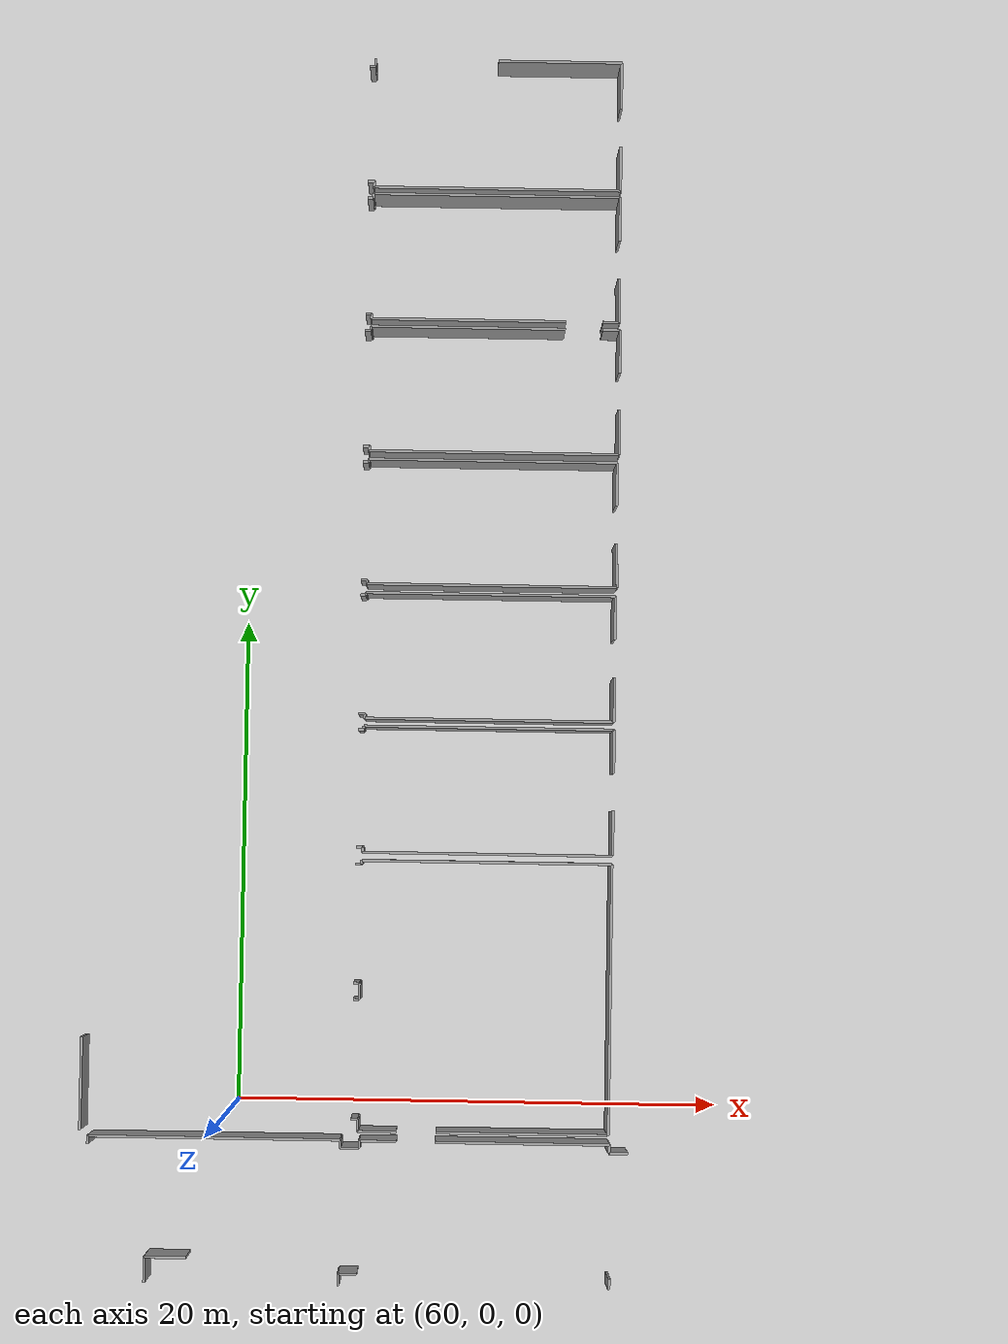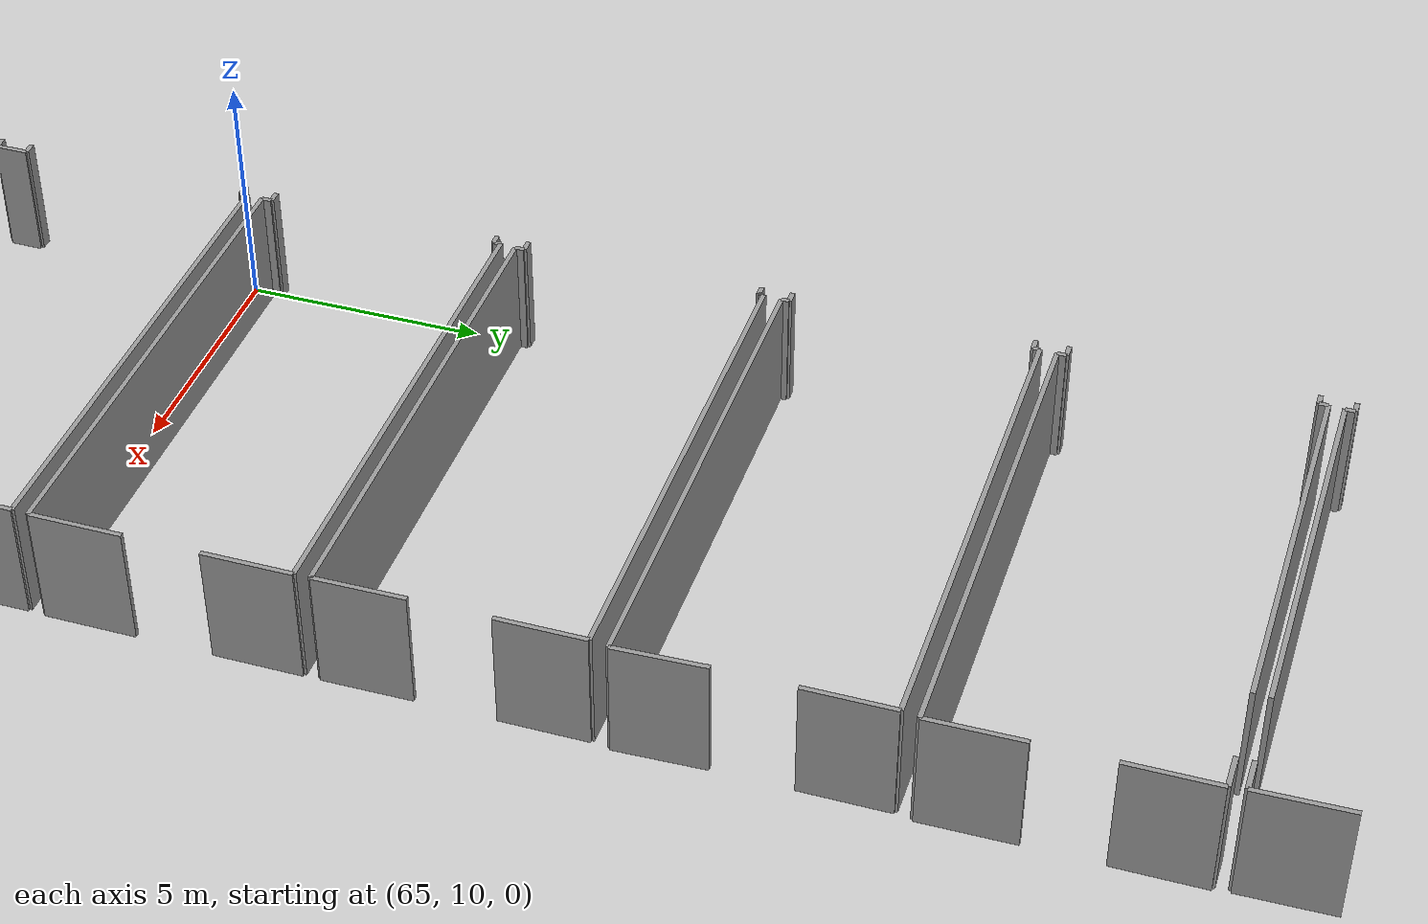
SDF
<sdf version="1.6">
 <world name="default">
  <model name="ground_plane">
   <static>1</static>
   <link name="link">
    <collision name="collision">
     <geometry><plane><normal>0 0 1</normal><size>100 100</size></plane></geometry>
     <surface><friction><ode><mu>100</mu><mu2>50</mu2></ode></friction></surface>
    </collision>
    <visual name="visual">
     <cast_shadows>0</cast_shadows>
     <geometry><plane><normal>0 0 1</normal><size>100 100</size></plane></geometry>
     <material>
      <script><uri>file://media/materials/scripts/gazebo.material</uri><name>Gazebo/Grey</name></script>
     </material>
    </visual>
   </link>
  </model>
  <model name="50015848">
   <static>1</static>
   <link name="Wall_550">
    <collision name="Wall_550_Collision">
     <geometry><box><size>0.328070587191 0.1 2.5</size></box></geometry>
     <pose>0.164035293595 0 1.25 0 0 0</pose>
    </collision>
    <visual name="Wall_550_Visual">
     <pose>0.164035293595 0 1.25 0 0 0</pose>
     <geometry><box><size>0.328070587191 0.1 2.5</size></box></geometry>
     <material>
      <script><uri>file://media/materials/scripts/gazebo.material</uri><name>Gazebo/Grey</name></script>
      <ambient>1 1 1 1</ambient>
     </material>
    </visual>
    <pose>185.689474719 -45.5980056962 0 0 0 1.57079632679</pose>
   </link>
   <link name="Wall_551">
    <collision name="Wall_551_Collision">
     <geometry><box><size>10.443707223 0.1 2.5</size></box></geometry>
     <pose>5.2218536115 0 1.25 0 0 0</pose>
    </collision>
    <visual name="Wall_551_Visual">
     <pose>5.2218536115 0 1.25 0 0 0</pose>
     <geometry><box><size>10.443707223 0.1 2.5</size></box></geometry>
     <material>
      <script><uri>file://media/materials/scripts/gazebo.material</uri><name>Gazebo/Grey</name></script>
      <ambient>1 1 1 1</ambient>
     </material>
    </visual>
    <pose>185.689474719 -45.269935109 0 0 0 0.0</pose>
   </link>
   <link name="Wall_552">
    <collision name="Wall_552_Collision">
     <geometry><box><size>0.333906336228 0.1 2.5</size></box></geometry>
     <pose>0.166953168114 0 1.25 0 0 0</pose>
    </collision>
    <visual name="Wall_552_Visual">
     <pose>0.166953168114 0 1.25 0 0 0</pose>
     <geometry><box><size>0.333906336228 0.1 2.5</size></box></geometry>
     <material>
      <script><uri>file://media/materials/scripts/gazebo.material</uri><name>Gazebo/Grey</name></script>
      <ambient>1 1 1 1</ambient>
     </material>
    </visual>
    <pose>196.133181942 -45.269935109 0 0 0 -1.57079632679</pose>
   </link>
   <link name="Wall_553">
    <collision name="Wall_553_Collision">
     <geometry><box><size>0.797975248812 0.1 2.5</size></box></geometry>
     <pose>0.398987624406 0 1.25 0 0 0</pose>
    </collision>
    <visual name="Wall_553_Visual">
     <pose>0.398987624406 0 1.25 0 0 0</pose>
     <geometry><box><size>0.797975248812 0.1 2.5</size></box></geometry>
     <material>
      <script><uri>file://media/materials/scripts/gazebo.material</uri><name>Gazebo/Grey</name></script>
      <ambient>1 1 1 1</ambient>
     </material>
    </visual>
    <pose>196.133181942 -45.6038414452 0 0 0 0.0</pose>
   </link>
   <link name="Wall_554">
    <collision name="Wall_554_Collision">
     <geometry><box><size>0.304727591041 0.1 2.5</size></box></geometry>
     <pose>0.15236379552 0 1.25 0 0 0</pose>
    </collision>
    <visual name="Wall_554_Visual">
     <pose>0.15236379552 0 1.25 0 0 0</pose>
     <geometry><box><size>0.304727591041 0.1 2.5</size></box></geometry>
     <material>
      <script><uri>file://media/materials/scripts/gazebo.material</uri><name>Gazebo/Grey</name></script>
      <ambient>1 1 1 1</ambient>
     </material>
    </visual>
    <pose>196.931157191 -45.6038414452 0 0 0 1.57079632679</pose>
   </link>
   <link name="Wall_555">
    <collision name="Wall_555_Collision">
     <geometry><box><size>1.53759300725 0.1 2.5</size></box></geometry>
     <pose>0.768796503625 0 1.25 0 0 0</pose>
    </collision>
    <visual name="Wall_555_Visual">
     <pose>0.768796503625 0 1.25 0 0 0</pose>
     <geometry><box><size>1.53759300725 0.1 2.5</size></box></geometry>
     <material>
      <script><uri>file://media/materials/scripts/gazebo.material</uri><name>Gazebo/Grey</name></script>
      <ambient>1 1 1 1</ambient>
     </material>
    </visual>
    <pose>196.931157191 -45.2991138542 0 0 0 0.0</pose>
   </link>
   <link name="Wall_556">
    <collision name="Wall_556_Collision">
     <geometry><box><size>7.22465730832 0.1 2.5</size></box></geometry>
     <pose>3.61232865416 0 1.25 0 0 0</pose>
    </collision>
    <visual name="Wall_556_Visual">
     <pose>3.61232865416 0 1.25 0 0 0</pose>
     <geometry><box><size>7.22465730832 0.1 2.5</size></box></geometry>
     <material>
      <script><uri>file://media/materials/scripts/gazebo.material</uri><name>Gazebo/Grey</name></script>
      <ambient>1 1 1 1</ambient>
     </material>
    </visual>
    <pose>200.049984459 -45.2991138542 0 0 0 0.0</pose>
   </link>
   <link name="Wall_557">
    <collision name="Wall_557_Collision">
     <geometry><box><size>0.348115116493 0.1 2.5</size></box></geometry>
     <pose>0.174057558246 0 1.25 0 0 0</pose>
    </collision>
    <visual name="Wall_557_Visual">
     <pose>0.174057558246 0 1.25 0 0 0</pose>
     <geometry><box><size>0.348115116493 0.1 2.5</size></box></geometry>
     <material>
      <script><uri>file://media/materials/scripts/gazebo.material</uri><name>Gazebo/Grey</name></script>
      <ambient>1 1 1 1</ambient>
     </material>
    </visual>
    <pose>207.274641767 -45.2991138542 0 0 0 -1.57079632679</pose>
   </link>
   <link name="Wall_558">
    <collision name="Wall_558_Collision">
     <geometry><box><size>0.768796503625 0.1 2.5</size></box></geometry>
     <pose>0.384398251813 0 1.25 0 0 0</pose>
    </collision>
    <visual name="Wall_558_Visual">
     <pose>0.384398251813 0 1.25 0 0 0</pose>
     <geometry><box><size>0.768796503625 0.1 2.5</size></box></geometry>
     <material>
      <script><uri>file://media/materials/scripts/gazebo.material</uri><name>Gazebo/Grey</name></script>
      <ambient>1 1 1 1</ambient>
     </material>
    </visual>
    <pose>207.274641767 -45.6472289707 0 0 0 0.0</pose>
   </link>
   <link name="Wall_597">
    <collision name="Wall_597_Collision">
     <geometry><box><size>0.460516717518 0.1 2.5</size></box></geometry>
     <pose>0.230258358759 0 1.25 0 0 0</pose>
    </collision>
    <visual name="Wall_597_Visual">
     <pose>0.230258358759 0 1.25 0 0 0</pose>
     <geometry><box><size>0.460516717518 0.1 2.5</size></box></geometry>
     <material>
      <script><uri>file://media/materials/scripts/gazebo.material</uri><name>Gazebo/Grey</name></script>
      <ambient>1 1 1 1</ambient>
     </material>
    </visual>
    <pose>207.334521627 -50.7816732107 0 0 0 -1.57079632679</pose>
   </link>
   <link name="Wall_601">
    <collision name="Wall_601_Collision">
     <geometry><box><size>0.76752786253 0.1 2.5</size></box></geometry>
     <pose>0.383763931265 0 1.25 0 0 0</pose>
    </collision>
    <visual name="Wall_601_Visual">
     <pose>0.383763931265 0 1.25 0 0 0</pose>
     <geometry><box><size>0.76752786253 0.1 2.5</size></box></geometry>
     <material>
      <script><uri>file://media/materials/scripts/gazebo.material</uri><name>Gazebo/Grey</name></script>
      <ambient>1 1 1 1</ambient>
     </material>
    </visual>
    <pose>196.920246878 -50.7733001795 0 0 0 3.14159265359</pose>
   </link>
   <link name="Wall_602">
    <collision name="Wall_602_Collision">
     <geometry><box><size>0.483859713668 0.1 2.5</size></box></geometry>
     <pose>0.241929856834 0 1.25 0 0 0</pose>
    </collision>
    <visual name="Wall_602_Visual">
     <pose>0.241929856834 0 1.25 0 0 0</pose>
     <geometry><box><size>0.483859713668 0.1 2.5</size></box></geometry>
     <material>
      <script><uri>file://media/materials/scripts/gazebo.material</uri><name>Gazebo/Grey</name></script>
      <ambient>1 1 1 1</ambient>
     </material>
    </visual>
    <pose>196.152719015 -50.7733001795 0 0 0 -1.57079632679</pose>
   </link>
   <link name="Wall_606">
    <collision name="Wall_606_Collision">
     <geometry><box><size>1.7263668022 0.1 2.5</size></box></geometry>
     <pose>0.8631834011 0 1.25 0 0 0</pose>
    </collision>
    <visual name="Wall_606_Visual">
     <pose>0.8631834011 0 1.25 0 0 0</pose>
     <geometry><box><size>1.7263668022 0.1 2.5</size></box></geometry>
     <material>
      <script><uri>file://media/materials/scripts/gazebo.material</uri><name>Gazebo/Grey</name></script>
      <ambient>1 1 1 1</ambient>
     </material>
    </visual>
    <pose>189.866094932 -50.2024116867 0 0 0 3.14159265359</pose>
   </link>
   <link name="Wall_607">
    <collision name="Wall_607_Collision">
     <geometry><box><size>1.0445990777 0.1 2.5</size></box></geometry>
     <pose>0.522299538849 0 1.25 0 0 0</pose>
    </collision>
    <visual name="Wall_607_Visual">
     <pose>0.522299538849 0 1.25 0 0 0</pose>
     <geometry><box><size>1.0445990777 0.1 2.5</size></box></geometry>
     <material>
      <script><uri>file://media/materials/scripts/gazebo.material</uri><name>Gazebo/Grey</name></script>
      <ambient>1 1 1 1</ambient>
     </material>
    </visual>
    <pose>188.13972813 -50.2024116867 0 0 0 -1.57079632679</pose>
   </link>
   <link name="Wall_893">
    <collision name="Wall_893_Collision">
     <geometry><box><size>3.82216189129 0.1 2.5</size></box></geometry>
     <pose>1.91108094565 0 1.25 0 0 0</pose>
    </collision>
    <visual name="Wall_893_Visual">
     <pose>1.91108094565 0 1.25 0 0 0</pose>
     <geometry><box><size>3.82216189129 0.1 2.5</size></box></geometry>
     <material>
      <script><uri>file://media/materials/scripts/gazebo.material</uri><name>Gazebo/Grey</name></script>
      <ambient>1 1 1 1</ambient>
     </material>
    </visual>
    <pose>185.348717721 -41.195567368 0 0 0 -1.57079632679</pose>
   </link>
   <link name="Wall_940">
    <collision name="Wall_940_Collision">
     <geometry><box><size>7.12392720537 0.1 2.5</size></box></geometry>
     <pose>3.56196360269 0 1.25 0 0 0</pose>
    </collision>
    <visual name="Wall_940_Visual">
     <pose>3.56196360269 0 1.25 0 0 0</pose>
     <geometry><box><size>7.12392720537 0.1 2.5</size></box></geometry>
     <material>
      <script><uri>file://media/materials/scripts/gazebo.material</uri><name>Gazebo/Grey</name></script>
      <ambient>1 1 1 1</ambient>
     </material>
    </visual>
    <pose>207.219329016 -44.9109096791 0 0 0 3.14159265359</pose>
   </link>
   <link name="Wall_941">
    <collision name="Wall_941_Collision">
     <geometry><box><size>1.59975642091 0.1 2.5</size></box></geometry>
     <pose>0.799878210455 0 1.25 0 0 0</pose>
    </collision>
    <visual name="Wall_941_Visual">
     <pose>0.799878210455 0 1.25 0 0 0</pose>
     <geometry><box><size>1.59975642091 0.1 2.5</size></box></geometry>
     <material>
      <script><uri>file://media/materials/scripts/gazebo.material</uri><name>Gazebo/Grey</name></script>
      <ambient>1 1 1 1</ambient>
     </material>
    </visual>
    <pose>198.443884833 -44.9109096791 0 0 0 3.14159265359</pose>
   </link>
   <link name="Wall_942">
    <collision name="Wall_942_Collision">
     <geometry><box><size>0.511262361322 0.1 2.5</size></box></geometry>
     <pose>0.255631180661 0 1.25 0 0 0</pose>
    </collision>
    <visual name="Wall_942_Visual">
     <pose>0.255631180661 0 1.25 0 0 0</pose>
     <geometry><box><size>0.511262361322 0.1 2.5</size></box></geometry>
     <material>
      <script><uri>file://media/materials/scripts/gazebo.material</uri><name>Gazebo/Grey</name></script>
      <ambient>1 1 1 1</ambient>
     </material>
    </visual>
    <pose>196.844128412 -44.9109096791 0 0 0 1.57079632679</pose>
   </link>
   <link name="Wall_943">
    <collision name="Wall_943_Collision">
     <geometry><box><size>0.275802574073 0.1 2.5</size></box></geometry>
     <pose>0.137901287036 0 1.25 0 0 0</pose>
    </collision>
    <visual name="Wall_943_Visual">
     <pose>0.137901287036 0 1.25 0 0 0</pose>
     <geometry><box><size>0.275802574073 0.1 2.5</size></box></geometry>
     <material>
      <script><uri>file://media/materials/scripts/gazebo.material</uri><name>Gazebo/Grey</name></script>
      <ambient>1 1 1 1</ambient>
     </material>
    </visual>
    <pose>196.844128412 -44.3996473178 0 0 0 3.14159265359</pose>
   </link>
   <link name="Wall_944">
    <collision name="Wall_944_Collision">
     <geometry><box><size>0.259817696275 0.1 2.5</size></box></geometry>
     <pose>0.129908848137 0 1.25 0 0 0</pose>
    </collision>
    <visual name="Wall_944_Visual">
     <pose>0.129908848137 0 1.25 0 0 0</pose>
     <geometry><box><size>0.259817696275 0.1 2.5</size></box></geometry>
     <material>
      <script><uri>file://media/materials/scripts/gazebo.material</uri><name>Gazebo/Grey</name></script>
      <ambient>1 1 1 1</ambient>
     </material>
    </visual>
    <pose>196.568325838 -39.479857151 0 0 0 0.0</pose>
   </link>
   <link name="Wall_945">
    <collision name="Wall_945_Collision">
     <geometry><box><size>0.681260268064 0.1 2.5</size></box></geometry>
     <pose>0.340630134032 0 1.25 0 0 0</pose>
    </collision>
    <visual name="Wall_945_Visual">
     <pose>0.340630134032 0 1.25 0 0 0</pose>
     <geometry><box><size>0.681260268064 0.1 2.5</size></box></geometry>
     <material>
      <script><uri>file://media/materials/scripts/gazebo.material</uri><name>Gazebo/Grey</name></script>
      <ambient>1 1 1 1</ambient>
     </material>
    </visual>
    <pose>196.828143534 -39.479857151 0 0 0 1.57079632679</pose>
   </link>
   <link name="Wall_946">
    <collision name="Wall_946_Collision">
     <geometry><box><size>0.252205849704 0.1 2.5</size></box></geometry>
     <pose>0.126102924852 0 1.25 0 0 0</pose>
    </collision>
    <visual name="Wall_946_Visual">
     <pose>0.126102924852 0 1.25 0 0 0</pose>
     <geometry><box><size>0.252205849704 0.1 2.5</size></box></geometry>
     <material>
      <script><uri>file://media/materials/scripts/gazebo.material</uri><name>Gazebo/Grey</name></script>
      <ambient>1 1 1 1</ambient>
     </material>
    </visual>
    <pose>196.828143534 -38.7985968829 0 0 0 3.14159265359</pose>
   </link>
   <link name="Wall_947">
    <collision name="Wall_947_Collision">
     <geometry><box><size>0.252205849704 0.1 2.5</size></box></geometry>
     <pose>0.126102924852 0 1.25 0 0 0</pose>
    </collision>
    <visual name="Wall_947_Visual">
     <pose>0.126102924852 0 1.25 0 0 0</pose>
     <geometry><box><size>0.252205849704 0.1 2.5</size></box></geometry>
     <material>
      <script><uri>file://media/materials/scripts/gazebo.material</uri><name>Gazebo/Grey</name></script>
      <ambient>1 1 1 1</ambient>
     </material>
    </visual>
    <pose>196.575937684 -33.8663740335 0 0 0 0.0</pose>
   </link>
   <link name="Wall_948">
    <collision name="Wall_948_Collision">
     <geometry><box><size>0.151475746754 0.1 2.5</size></box></geometry>
     <pose>0.0757378733769 0 1.25 0 0 0</pose>
    </collision>
    <visual name="Wall_948_Visual">
     <pose>0.0757378733769 0 1.25 0 0 0</pose>
     <geometry><box><size>0.151475746754 0.1 2.5</size></box></geometry>
     <material>
      <script><uri>file://media/materials/scripts/gazebo.material</uri><name>Gazebo/Grey</name></script>
      <ambient>1 1 1 1</ambient>
     </material>
    </visual>
    <pose>196.828143534 -33.8663740335 0 0 0 1.57079632679</pose>
   </link>
   <link name="Wall_949">
    <collision name="Wall_949_Collision">
     <geometry><box><size>10.3944839485 0.1 2.5</size></box></geometry>
     <pose>5.19724197426 0 1.25 0 0 0</pose>
    </collision>
    <visual name="Wall_949_Visual">
     <pose>5.19724197426 0 1.25 0 0 0</pose>
     <geometry><box><size>10.3944839485 0.1 2.5</size></box></geometry>
     <material>
      <script><uri>file://media/materials/scripts/gazebo.material</uri><name>Gazebo/Grey</name></script>
      <ambient>1 1 1 1</ambient>
     </material>
    </visual>
    <pose>196.828143534 -33.7148982867 0 0 0 0.0</pose>
   </link>
   <link name="Wall_950">
    <collision name="Wall_950_Collision">
     <geometry><box><size>11.1960118783 0.1 2.5</size></box></geometry>
     <pose>5.59800593914 0 1.25 0 0 0</pose>
    </collision>
    <visual name="Wall_950_Visual">
     <pose>5.59800593914 0 1.25 0 0 0</pose>
     <geometry><box><size>11.1960118783 0.1 2.5</size></box></geometry>
     <material>
      <script><uri>file://media/materials/scripts/gazebo.material</uri><name>Gazebo/Grey</name></script>
      <ambient>1 1 1 1</ambient>
     </material>
    </visual>
    <pose>207.222627483 -33.7148982867 0 0 0 -1.57109093767</pose>
   </link>
   <link name="Wall_1015">
    <collision name="Wall_1015_Collision">
     <geometry><box><size>10.3868721019 0.1 2.5</size></box></geometry>
     <pose>5.19343605097 0 1.25 0 0 0</pose>
    </collision>
    <visual name="Wall_1015_Visual">
     <pose>5.19343605097 0 1.25 0 0 0</pose>
     <geometry><box><size>10.3868721019 0.1 2.5</size></box></geometry>
     <material>
      <script><uri>file://media/materials/scripts/gazebo.material</uri><name>Gazebo/Grey</name></script>
      <ambient>1 1 1 1</ambient>
     </material>
    </visual>
    <pose>207.241910827 -33.3738875603 0 0 0 3.14159265359</pose>
   </link>
   <link name="Wall_1016">
    <collision name="Wall_1016_Collision">
     <geometry><box><size>0.21186306288 0.1 2.5</size></box></geometry>
     <pose>0.10593153144 0 1.25 0 0 0</pose>
    </collision>
    <visual name="Wall_1016_Visual">
     <pose>0.10593153144 0 1.25 0 0 0</pose>
     <geometry><box><size>0.21186306288 0.1 2.5</size></box></geometry>
     <material>
      <script><uri>file://media/materials/scripts/gazebo.material</uri><name>Gazebo/Grey</name></script>
      <ambient>1 1 1 1</ambient>
     </material>
    </visual>
    <pose>196.855038725 -33.3738875603 0 0 0 1.57079632679</pose>
   </link>
   <link name="Wall_1017">
    <collision name="Wall_1017_Collision">
     <geometry><box><size>0.259563968056 0.1 2.5</size></box></geometry>
     <pose>0.129781984028 0 1.25 0 0 0</pose>
    </collision>
    <visual name="Wall_1017_Visual">
     <pose>0.129781984028 0 1.25 0 0 0</pose>
     <geometry><box><size>0.259563968056 0.1 2.5</size></box></geometry>
     <material>
      <script><uri>file://media/materials/scripts/gazebo.material</uri><name>Gazebo/Grey</name></script>
      <ambient>1 1 1 1</ambient>
     </material>
    </visual>
    <pose>196.855038725 -33.1620244975 0 0 0 3.14159265359</pose>
   </link>
   <link name="Wall_1018">
    <collision name="Wall_1018_Collision">
     <geometry><box><size>0.216937627261 0.1 2.5</size></box></geometry>
     <pose>0.10846881363 0 1.25 0 0 0</pose>
    </collision>
    <visual name="Wall_1018_Visual">
     <pose>0.10846881363 0 1.25 0 0 0</pose>
     <geometry><box><size>0.216937627261 0.1 2.5</size></box></geometry>
     <material>
      <script><uri>file://media/materials/scripts/gazebo.material</uri><name>Gazebo/Grey</name></script>
      <ambient>1 1 1 1</ambient>
     </material>
    </visual>
    <pose>196.595474757 -28.2767413685 0 0 0 0.0</pose>
   </link>
   <link name="Wall_1019">
    <collision name="Wall_1019_Collision">
     <geometry><box><size>0.153505572506 0.1 2.5</size></box></geometry>
     <pose>0.076752786253 0 1.25 0 0 0</pose>
    </collision>
    <visual name="Wall_1019_Visual">
     <pose>0.076752786253 0 1.25 0 0 0</pose>
     <geometry><box><size>0.153505572506 0.1 2.5</size></box></geometry>
     <material>
      <script><uri>file://media/materials/scripts/gazebo.material</uri><name>Gazebo/Grey</name></script>
      <ambient>1 1 1 1</ambient>
     </material>
    </visual>
    <pose>196.812412384 -28.2767413685 0 0 0 1.57079632679</pose>
   </link>
   <link name="Wall_1020">
    <collision name="Wall_1020_Collision">
     <geometry><box><size>10.4317819967 0.1 2.5</size></box></geometry>
     <pose>5.21589099836 0 1.25 0 0 0</pose>
    </collision>
    <visual name="Wall_1020_Visual">
     <pose>5.21589099836 0 1.25 0 0 0</pose>
     <geometry><box><size>10.4317819967 0.1 2.5</size></box></geometry>
     <material>
      <script><uri>file://media/materials/scripts/gazebo.material</uri><name>Gazebo/Grey</name></script>
      <ambient>1 1 1 1</ambient>
     </material>
    </visual>
    <pose>196.812412384 -28.123235796 0 0 0 0.0</pose>
   </link>
   <link name="Wall_1021">
    <collision name="Wall_1021_Collision">
     <geometry><box><size>1.82100742789 0.1 2.5</size></box></geometry>
     <pose>0.910503713947 0 1.25 0 0 0</pose>
    </collision>
    <visual name="Wall_1021_Visual">
     <pose>0.910503713947 0 1.25 0 0 0</pose>
     <geometry><box><size>1.82100742789 0.1 2.5</size></box></geometry>
     <material>
      <script><uri>file://media/materials/scripts/gazebo.material</uri><name>Gazebo/Grey</name></script>
      <ambient>1 1 1 1</ambient>
     </material>
    </visual>
    <pose>207.244194381 -28.123235796 0 0 0 -1.57079632679</pose>
   </link>
   <link name="Wall_1022">
    <collision name="Wall_1022_Collision">
     <geometry><box><size>1.87911257757 0.1 2.5</size></box></geometry>
     <pose>0.939556288785 0 1.25 0 0 0</pose>
    </collision>
    <visual name="Wall_1022_Visual">
     <pose>0.939556288785 0 1.25 0 0 0</pose>
     <geometry><box><size>1.87911257757 0.1 2.5</size></box></geometry>
     <material>
      <script><uri>file://media/materials/scripts/gazebo.material</uri><name>Gazebo/Grey</name></script>
      <ambient>1 1 1 1</ambient>
     </material>
    </visual>
    <pose>207.244194381 -31.4947763703 0 0 0 -1.57201155709</pose>
   </link>
   <link name="Wall_1023">
    <collision name="Wall_1023_Collision">
     <geometry><box><size>10.3942302203 0.1 2.5</size></box></geometry>
     <pose>5.19711511015 0 1.25 0 0 0</pose>
    </collision>
    <visual name="Wall_1023_Visual">
     <pose>5.19711511015 0 1.25 0 0 0</pose>
     <geometry><box><size>10.3942302203 0.1 2.5</size></box></geometry>
     <material>
      <script><uri>file://media/materials/scripts/gazebo.material</uri><name>Gazebo/Grey</name></script>
      <ambient>1 1 1 1</ambient>
     </material>
    </visual>
    <pose>207.238866089 -27.7946577523 0 0 0 3.14159265359</pose>
   </link>
   <link name="Wall_1024">
    <collision name="Wall_1024_Collision">
     <geometry><box><size>0.191818533578 0.1 2.5</size></box></geometry>
     <pose>0.0959092667889 0 1.25 0 0 0</pose>
    </collision>
    <visual name="Wall_1024_Visual">
     <pose>0.0959092667889 0 1.25 0 0 0</pose>
     <geometry><box><size>0.191818533578 0.1 2.5</size></box></geometry>
     <material>
      <script><uri>file://media/materials/scripts/gazebo.material</uri><name>Gazebo/Grey</name></script>
      <ambient>1 1 1 1</ambient>
     </material>
    </visual>
    <pose>196.844635868 -27.7946577523 0 0 0 1.57079632679</pose>
   </link>
   <link name="Wall_1025">
    <collision name="Wall_1025_Collision">
     <geometry><box><size>0.257534142303 0.1 2.5</size></box></geometry>
     <pose>0.128767071152 0 1.25 0 0 0</pose>
    </collision>
    <visual name="Wall_1025_Visual">
     <pose>0.128767071152 0 1.25 0 0 0</pose>
     <geometry><box><size>0.257534142303 0.1 2.5</size></box></geometry>
     <material>
      <script><uri>file://media/materials/scripts/gazebo.material</uri><name>Gazebo/Grey</name></script>
      <ambient>1 1 1 1</ambient>
     </material>
    </visual>
    <pose>196.844635868 -27.6028392188 0 0 0 3.14159265359</pose>
   </link>
   <link name="Wall_1026">
    <collision name="Wall_1026_Collision">
     <geometry><box><size>0.219474909451 0.1 2.5</size></box></geometry>
     <pose>0.109737454725 0 1.25 0 0 0</pose>
    </collision>
    <visual name="Wall_1026_Visual">
     <pose>0.109737454725 0 1.25 0 0 0</pose>
     <geometry><box><size>0.219474909451 0.1 2.5</size></box></geometry>
     <material>
      <script><uri>file://media/materials/scripts/gazebo.material</uri><name>Gazebo/Grey</name></script>
      <ambient>1 1 1 1</ambient>
     </material>
    </visual>
    <pose>196.587101726 -22.6523479375 0 0 0 0.0</pose>
   </link>
   <link name="Wall_1027">
    <collision name="Wall_1027_Collision">
     <geometry><box><size>0.104789754455 0.1 2.5</size></box></geometry>
     <pose>0.0523948772273 0 1.25 0 0 0</pose>
    </collision>
    <visual name="Wall_1027_Visual">
     <pose>0.0523948772273 0 1.25 0 0 0</pose>
     <geometry><box><size>0.104789754455 0.1 2.5</size></box></geometry>
     <material>
      <script><uri>file://media/materials/scripts/gazebo.material</uri><name>Gazebo/Grey</name></script>
      <ambient>1 1 1 1</ambient>
     </material>
    </visual>
    <pose>196.806576635 -22.6523479375 0 0 0 1.57079632679</pose>
   </link>
   <link name="Wall_1028">
    <collision name="Wall_1028_Collision">
     <geometry><box><size>10.4127523803 0.1 2.5</size></box></geometry>
     <pose>5.20637619014 0 1.25 0 0 0</pose>
    </collision>
    <visual name="Wall_1028_Visual">
     <pose>5.20637619014 0 1.25 0 0 0</pose>
     <geometry><box><size>10.4127523803 0.1 2.5</size></box></geometry>
     <material>
      <script><uri>file://media/materials/scripts/gazebo.material</uri><name>Gazebo/Grey</name></script>
      <ambient>1 1 1 1</ambient>
     </material>
    </visual>
    <pose>196.806576635 -22.5475581831 0 0 0 0.0</pose>
   </link>
   <link name="Wall_1029">
    <collision name="Wall_1029_Collision">
     <geometry><box><size>1.80096289859 0.1 2.5</size></box></geometry>
     <pose>0.900481449296 0 1.25 0 0 0</pose>
    </collision>
    <visual name="Wall_1029_Visual">
     <pose>0.900481449296 0 1.25 0 0 0</pose>
     <geometry><box><size>1.80096289859 0.1 2.5</size></box></geometry>
     <material>
      <script><uri>file://media/materials/scripts/gazebo.material</uri><name>Gazebo/Grey</name></script>
      <ambient>1 1 1 1</ambient>
     </material>
    </visual>
    <pose>207.219329016 -22.5475581831 0 0 0 -1.57079632679</pose>
   </link>
   <link name="Wall_1030">
    <collision name="Wall_1030_Collision">
     <geometry><box><size>1.83912590574 0.1 2.5</size></box></geometry>
     <pose>0.919562952869 0 1.25 0 0 0</pose>
    </collision>
    <visual name="Wall_1030_Visual">
     <pose>0.919562952869 0 1.25 0 0 0</pose>
     <geometry><box><size>1.83912590574 0.1 2.5</size></box></geometry>
     <material>
      <script><uri>file://media/materials/scripts/gazebo.material</uri><name>Gazebo/Grey</name></script>
      <ambient>1 1 1 1</ambient>
     </material>
    </visual>
    <pose>207.219329016 -25.9556356209 0 0 0 -1.56017310612</pose>
   </link>
   <link name="Wall_1031">
    <collision name="Wall_1031_Collision">
     <geometry><box><size>10.4538563518 0.1 2.5</size></box></geometry>
     <pose>5.22692817588 0 1.25 0 0 0</pose>
    </collision>
    <visual name="Wall_1031_Visual">
     <pose>5.22692817588 0 1.25 0 0 0</pose>
     <geometry><box><size>10.4538563518 0.1 2.5</size></box></geometry>
     <material>
      <script><uri>file://media/materials/scripts/gazebo.material</uri><name>Gazebo/Grey</name></script>
      <ambient>1 1 1 1</ambient>
     </material>
    </visual>
    <pose>207.289104276 -22.1748314293 0 0 0 3.14159265359</pose>
   </link>
   <link name="Wall_1032">
    <collision name="Wall_1032_Collision">
     <geometry><box><size>0.161371147296 0.1 2.5</size></box></geometry>
     <pose>0.0806855736478 0 1.25 0 0 0</pose>
    </collision>
    <visual name="Wall_1032_Visual">
     <pose>0.0806855736478 0 1.25 0 0 0</pose>
     <geometry><box><size>0.161371147296 0.1 2.5</size></box></geometry>
     <material>
      <script><uri>file://media/materials/scripts/gazebo.material</uri><name>Gazebo/Grey</name></script>
      <ambient>1 1 1 1</ambient>
     </material>
    </visual>
    <pose>196.835247924 -22.1748314293 0 0 0 1.57079632679</pose>
   </link>
   <link name="Wall_1033">
    <collision name="Wall_1033_Collision">
     <geometry><box><size>0.257534142303 0.1 2.5</size></box></geometry>
     <pose>0.128767071152 0 1.25 0 0 0</pose>
    </collision>
    <visual name="Wall_1033_Visual">
     <pose>0.128767071152 0 1.25 0 0 0</pose>
     <geometry><box><size>0.257534142303 0.1 2.5</size></box></geometry>
     <material>
      <script><uri>file://media/materials/scripts/gazebo.material</uri><name>Gazebo/Grey</name></script>
      <ambient>1 1 1 1</ambient>
     </material>
    </visual>
    <pose>196.835247924 -22.013460282 0 0 0 3.14159265359</pose>
   </link>
   <link name="Wall_1034">
    <collision name="Wall_1034_Collision">
     <geometry><box><size>0.247892469981 0.1 2.5</size></box></geometry>
     <pose>0.12394623499 0 1.25 0 0 0</pose>
    </collision>
    <visual name="Wall_1034_Visual">
     <pose>0.12394623499 0 1.25 0 0 0</pose>
     <geometry><box><size>0.247892469981 0.1 2.5</size></box></geometry>
     <material>
      <script><uri>file://media/materials/scripts/gazebo.material</uri><name>Gazebo/Grey</name></script>
      <ambient>1 1 1 1</ambient>
     </material>
    </visual>
    <pose>196.577713782 -17.0723569449 0 0 0 0.0</pose>
   </link>
   <link name="Wall_1035">
    <collision name="Wall_1035_Collision">
     <geometry><box><size>0.133461043204 0.1 2.5</size></box></geometry>
     <pose>0.0667305216018 0 1.25 0 0 0</pose>
    </collision>
    <visual name="Wall_1035_Visual">
     <pose>0.0667305216018 0 1.25 0 0 0</pose>
     <geometry><box><size>0.133461043204 0.1 2.5</size></box></geometry>
     <material>
      <script><uri>file://media/materials/scripts/gazebo.material</uri><name>Gazebo/Grey</name></script>
      <ambient>1 1 1 1</ambient>
     </material>
    </visual>
    <pose>196.825606252 -17.0723569449 0 0 0 1.57079632679</pose>
   </link>
   <link name="Wall_1036">
    <collision name="Wall_1036_Collision">
     <geometry><box><size>10.3970212307 0.1 2.5</size></box></geometry>
     <pose>5.19851061535 0 1.25 0 0 0</pose>
    </collision>
    <visual name="Wall_1036_Visual">
     <pose>5.19851061535 0 1.25 0 0 0</pose>
     <geometry><box><size>10.3970212307 0.1 2.5</size></box></geometry>
     <material>
      <script><uri>file://media/materials/scripts/gazebo.material</uri><name>Gazebo/Grey</name></script>
      <ambient>1 1 1 1</ambient>
     </material>
    </visual>
    <pose>196.825606252 -16.9388959017 0 0 0 0.0</pose>
   </link>
   <link name="Wall_1037">
    <collision name="Wall_1037_Collision">
     <geometry><box><size>1.81238066845 0.1 2.5</size></box></geometry>
     <pose>0.906190334223 0 1.25 0 0 0</pose>
    </collision>
    <visual name="Wall_1037_Visual">
     <pose>0.906190334223 0 1.25 0 0 0</pose>
     <geometry><box><size>1.81238066845 0.1 2.5</size></box></geometry>
     <material>
      <script><uri>file://media/materials/scripts/gazebo.material</uri><name>Gazebo/Grey</name></script>
      <ambient>1 1 1 1</ambient>
     </material>
    </visual>
    <pose>207.222627483 -16.9388959017 0 0 0 -1.57079632679</pose>
   </link>
   <link name="Wall_1038">
    <collision name="Wall_1038_Collision">
     <geometry><box><size>1.84174461404 0.1 2.5</size></box></geometry>
     <pose>0.920872307018 0 1.25 0 0 0</pose>
    </collision>
    <visual name="Wall_1038_Visual">
     <pose>0.920872307018 0 1.25 0 0 0</pose>
     <geometry><box><size>1.84174461404 0.1 2.5</size></box></geometry>
     <material>
      <script><uri>file://media/materials/scripts/gazebo.material</uri><name>Gazebo/Grey</name></script>
      <ambient>1 1 1 1</ambient>
     </material>
    </visual>
    <pose>207.222627483 -20.3342869286 0 0 0 -1.53469401609</pose>
   </link>
   <link name="Wall_1039">
    <collision name="Wall_1039_Collision">
     <geometry><box><size>10.4553787211 0.1 2.5</size></box></geometry>
     <pose>5.22768936054 0 1.25 0 0 0</pose>
    </collision>
    <visual name="Wall_1039_Visual">
     <pose>5.22768936054 0 1.25 0 0 0</pose>
     <geometry><box><size>10.4553787211 0.1 2.5</size></box></geometry>
     <material>
      <script><uri>file://media/materials/scripts/gazebo.material</uri><name>Gazebo/Grey</name></script>
      <ambient>1 1 1 1</ambient>
     </material>
    </visual>
    <pose>207.296208666 -16.5930643391 0 0 0 3.14159265359</pose>
   </link>
   <link name="Wall_1040">
    <collision name="Wall_1040_Collision">
     <geometry><box><size>0.185729056321 0.1 2.5</size></box></geometry>
     <pose>0.0928645281607 0 1.25 0 0 0</pose>
    </collision>
    <visual name="Wall_1040_Visual">
     <pose>0.0928645281607 0 1.25 0 0 0</pose>
     <geometry><box><size>0.185729056321 0.1 2.5</size></box></geometry>
     <material>
      <script><uri>file://media/materials/scripts/gazebo.material</uri><name>Gazebo/Grey</name></script>
      <ambient>1 1 1 1</ambient>
     </material>
    </visual>
    <pose>196.840829945 -16.5930643391 0 0 0 1.57079632679</pose>
   </link>
   <link name="Wall_1041">
    <collision name="Wall_1041_Collision">
     <geometry><box><size>0.277578671606 0.1 2.5</size></box></geometry>
     <pose>0.138789335803 0 1.25 0 0 0</pose>
    </collision>
    <visual name="Wall_1041_Visual">
     <pose>0.138789335803 0 1.25 0 0 0</pose>
     <geometry><box><size>0.277578671606 0.1 2.5</size></box></geometry>
     <material>
      <script><uri>file://media/materials/scripts/gazebo.material</uri><name>Gazebo/Grey</name></script>
      <ambient>1 1 1 1</ambient>
     </material>
    </visual>
    <pose>196.840829945 -16.4073352828 0 0 0 3.14159265359</pose>
   </link>
   <link name="Wall_1042">
    <collision name="Wall_1042_Collision">
     <geometry><box><size>0.249668567514 0.1 2.5</size></box></geometry>
     <pose>0.124834283757 0 1.25 0 0 0</pose>
    </collision>
    <visual name="Wall_1042_Visual">
     <pose>0.124834283757 0 1.25 0 0 0</pose>
     <geometry><box><size>0.249668567514 0.1 2.5</size></box></geometry>
     <material>
      <script><uri>file://media/materials/scripts/gazebo.material</uri><name>Gazebo/Grey</name></script>
      <ambient>1 1 1 1</ambient>
     </material>
    </visual>
    <pose>196.563251273 -11.5207835127 0 0 0 0.0</pose>
   </link>
   <link name="Wall_1043">
    <collision name="Wall_1043_Collision">
     <geometry><box><size>0.182430589474 0.1 2.5</size></box></geometry>
     <pose>0.091215294737 0 1.25 0 0 0</pose>
    </collision>
    <visual name="Wall_1043_Visual">
     <pose>0.091215294737 0 1.25 0 0 0</pose>
     <geometry><box><size>0.182430589474 0.1 2.5</size></box></geometry>
     <material>
      <script><uri>file://media/materials/scripts/gazebo.material</uri><name>Gazebo/Grey</name></script>
      <ambient>1 1 1 1</ambient>
     </material>
    </visual>
    <pose>196.812919841 -11.5207835127 0 0 0 1.57079632679</pose>
   </link>
   <link name="Wall_1044">
    <collision name="Wall_1044_Collision">
     <geometry><box><size>8.16167562116 0.1 2.5</size></box></geometry>
     <pose>4.08083781058 0 1.25 0 0 0</pose>
    </collision>
    <visual name="Wall_1044_Visual">
     <pose>4.08083781058 0 1.25 0 0 0</pose>
     <geometry><box><size>8.16167562116 0.1 2.5</size></box></geometry>
     <material>
      <script><uri>file://media/materials/scripts/gazebo.material</uri><name>Gazebo/Grey</name></script>
      <ambient>1 1 1 1</ambient>
     </material>
    </visual>
    <pose>196.812919841 -11.3383529233 0 0 0 0.0</pose>
   </link>
   <link name="Wall_1045">
    <collision name="Wall_1045_Collision">
     <geometry><box><size>0.724140337078 0.1 2.5</size></box></geometry>
     <pose>0.362070168539 0 1.25 0 0 0</pose>
    </collision>
    <visual name="Wall_1045_Visual">
     <pose>0.362070168539 0 1.25 0 0 0</pose>
     <geometry><box><size>0.724140337078 0.1 2.5</size></box></geometry>
     <material>
      <script><uri>file://media/materials/scripts/gazebo.material</uri><name>Gazebo/Grey</name></script>
      <ambient>1 1 1 1</ambient>
     </material>
    </visual>
    <pose>206.553038713 -11.3383529233 0 0 0 0.0</pose>
   </link>
   <link name="Wall_1046">
    <collision name="Wall_1046_Collision">
     <geometry><box><size>1.82278352543 0.1 2.5</size></box></geometry>
     <pose>0.911391762713 0 1.25 0 0 0</pose>
    </collision>
    <visual name="Wall_1046_Visual">
     <pose>0.911391762713 0 1.25 0 0 0</pose>
     <geometry><box><size>1.82278352543 0.1 2.5</size></box></geometry>
     <material>
      <script><uri>file://media/materials/scripts/gazebo.material</uri><name>Gazebo/Grey</name></script>
      <ambient>1 1 1 1</ambient>
     </material>
    </visual>
    <pose>207.27717905 -11.3383529233 0 0 0 -1.57079632679</pose>
   </link>
   <link name="Wall_1047">
    <collision name="Wall_1047_Collision">
     <geometry><box><size>1.90381793496 0.1 2.5</size></box></geometry>
     <pose>0.951908967478 0 1.25 0 0 0</pose>
    </collision>
    <visual name="Wall_1047_Visual">
     <pose>0.951908967478 0 1.25 0 0 0</pose>
     <geometry><box><size>1.90381793496 0.1 2.5</size></box></geometry>
     <material>
      <script><uri>file://media/materials/scripts/gazebo.material</uri><name>Gazebo/Grey</name></script>
      <ambient>1 1 1 1</ambient>
     </material>
    </visual>
    <pose>207.27717905 -14.6893415118 0 0 0 -1.56080065811</pose>
   </link>
   <link name="Wall_1048">
    <collision name="Wall_1048_Collision">
     <geometry><box><size>0.681767724502 0.1 2.5</size></box></geometry>
     <pose>0.340883862251 0 1.25 0 0 0</pose>
    </collision>
    <visual name="Wall_1048_Visual">
     <pose>0.340883862251 0 1.25 0 0 0</pose>
     <geometry><box><size>0.681767724502 0.1 2.5</size></box></geometry>
     <material>
      <script><uri>file://media/materials/scripts/gazebo.material</uri><name>Gazebo/Grey</name></script>
      <ambient>1 1 1 1</ambient>
     </material>
    </visual>
    <pose>207.231000514 -11.0191628237 0 0 0 3.14159265359</pose>
   </link>
   <link name="Wall_1049">
    <collision name="Wall_1049_Collision">
     <geometry><box><size>8.15939206719 0.1 2.5</size></box></geometry>
     <pose>4.07969603359 0 1.25 0 0 0</pose>
    </collision>
    <visual name="Wall_1049_Visual">
     <pose>4.07969603359 0 1.25 0 0 0</pose>
     <geometry><box><size>8.15939206719 0.1 2.5</size></box></geometry>
     <material>
      <script><uri>file://media/materials/scripts/gazebo.material</uri><name>Gazebo/Grey</name></script>
      <ambient>1 1 1 1</ambient>
     </material>
    </visual>
    <pose>204.994639991 -11.0191628237 0 0 0 3.14159265359</pose>
   </link>
   <link name="Wall_1050">
    <collision name="Wall_1050_Collision">
     <geometry><box><size>0.194609543987 0.1 2.5</size></box></geometry>
     <pose>0.0973047719935 0 1.25 0 0 0</pose>
    </collision>
    <visual name="Wall_1050_Visual">
     <pose>0.0973047719935 0 1.25 0 0 0</pose>
     <geometry><box><size>0.194609543987 0.1 2.5</size></box></geometry>
     <material>
      <script><uri>file://media/materials/scripts/gazebo.material</uri><name>Gazebo/Grey</name></script>
      <ambient>1 1 1 1</ambient>
     </material>
    </visual>
    <pose>196.835247924 -11.0191628237 0 0 0 1.57079632679</pose>
   </link>
   <link name="Wall_1051">
    <collision name="Wall_1051_Collision">
     <geometry><box><size>0.2481461982 0.1 2.5</size></box></geometry>
     <pose>0.1240730991 0 1.25 0 0 0</pose>
    </collision>
    <visual name="Wall_1051_Visual">
     <pose>0.1240730991 0 1.25 0 0 0</pose>
     <geometry><box><size>0.2481461982 0.1 2.5</size></box></geometry>
     <material>
      <script><uri>file://media/materials/scripts/gazebo.material</uri><name>Gazebo/Grey</name></script>
      <ambient>1 1 1 1</ambient>
     </material>
    </visual>
    <pose>196.835247924 -10.8245532798 0 0 0 3.14159265359</pose>
   </link>
   <link name="Wall_1052">
    <collision name="Wall_1052_Collision">
     <geometry><box><size>0.225818114926 0.1 2.5</size></box></geometry>
     <pose>0.112909057463 0 1.25 0 0 0</pose>
    </collision>
    <visual name="Wall_1052_Visual">
     <pose>0.112909057463 0 1.25 0 0 0</pose>
     <geometry><box><size>0.225818114926 0.1 2.5</size></box></geometry>
     <material>
      <script><uri>file://media/materials/scripts/gazebo.material</uri><name>Gazebo/Grey</name></script>
      <ambient>1 1 1 1</ambient>
     </material>
    </visual>
    <pose>196.587101726 -5.91389732888 0 0 0 0.0</pose>
   </link>
   <link name="Wall_1053">
    <collision name="Wall_1053_Collision">
     <geometry><box><size>0.190803620702 0.1 2.5</size></box></geometry>
     <pose>0.0954018103508 0 1.25 0 0 0</pose>
    </collision>
    <visual name="Wall_1053_Visual">
     <pose>0.0954018103508 0 1.25 0 0 0</pose>
     <geometry><box><size>0.190803620702 0.1 2.5</size></box></geometry>
     <material>
      <script><uri>file://media/materials/scripts/gazebo.material</uri><name>Gazebo/Grey</name></script>
      <ambient>1 1 1 1</ambient>
     </material>
    </visual>
    <pose>196.812919841 -5.91389732888 0 0 0 1.57079632679</pose>
   </link>
   <link name="Wall_1054">
    <collision name="Wall_1054_Collision">
     <geometry><box><size>10.384588548 0.1 2.5</size></box></geometry>
     <pose>5.19229427399 0 1.25 0 0 0</pose>
    </collision>
    <visual name="Wall_1054_Visual">
     <pose>5.19229427399 0 1.25 0 0 0</pose>
     <geometry><box><size>10.384588548 0.1 2.5</size></box></geometry>
     <material>
      <script><uri>file://media/materials/scripts/gazebo.material</uri><name>Gazebo/Grey</name></script>
      <ambient>1 1 1 1</ambient>
     </material>
    </visual>
    <pose>196.812919841 -5.72309370817 0 0 0 0.0</pose>
   </link>
   <link name="Wall_1055">
    <collision name="Wall_1055_Collision">
     <geometry><box><size>1.85805174787 0.1 2.5</size></box></geometry>
     <pose>0.929025873935 0 1.25 0 0 0</pose>
    </collision>
    <visual name="Wall_1055_Visual">
     <pose>0.929025873935 0 1.25 0 0 0</pose>
     <geometry><box><size>1.85805174787 0.1 2.5</size></box></geometry>
     <material>
      <script><uri>file://media/materials/scripts/gazebo.material</uri><name>Gazebo/Grey</name></script>
      <ambient>1 1 1 1</ambient>
     </material>
    </visual>
    <pose>207.197508389 -5.72309370817 0 0 0 -1.57079632679</pose>
   </link>
   <link name="Wall_1056">
    <collision name="Wall_1056_Collision">
     <geometry><box><size>1.86545681847 0.1 2.5</size></box></geometry>
     <pose>0.932728409233 0 1.25 0 0 0</pose>
    </collision>
    <visual name="Wall_1056_Visual">
     <pose>0.932728409233 0 1.25 0 0 0</pose>
     <geometry><box><size>1.86545681847 0.1 2.5</size></box></geometry>
     <material>
      <script><uri>file://media/materials/scripts/gazebo.material</uri><name>Gazebo/Grey</name></script>
      <ambient>1 1 1 1</ambient>
     </material>
    </visual>
    <pose>207.197508389 -9.15400668574 0 0 0 -1.55284151586</pose>
   </link>
   <link name="Wall_1057">
    <collision name="Wall_1057_Collision">
     <geometry><box><size>10.3488128691 0.1 2.5</size></box></geometry>
     <pose>5.17440643455 0 1.25 0 0 0</pose>
    </collision>
    <visual name="Wall_1057_Visual">
     <pose>5.17440643455 0 1.25 0 0 0</pose>
     <geometry><box><size>10.3488128691 0.1 2.5</size></box></geometry>
     <material>
      <script><uri>file://media/materials/scripts/gazebo.material</uri><name>Gazebo/Grey</name></script>
      <ambient>1 1 1 1</ambient>
     </material>
    </visual>
    <pose>207.20309041 -5.44247029794 0 0 0 3.14159265359</pose>
   </link>
   <link name="Wall_1058">
    <collision name="Wall_1058_Collision">
     <geometry><box><size>0.236220971906 0.1 2.5</size></box></geometry>
     <pose>0.118110485953 0 1.25 0 0 0</pose>
    </collision>
    <visual name="Wall_1058_Visual">
     <pose>0.118110485953 0 1.25 0 0 0</pose>
     <geometry><box><size>0.236220971906 0.1 2.5</size></box></geometry>
     <material>
      <script><uri>file://media/materials/scripts/gazebo.material</uri><name>Gazebo/Grey</name></script>
      <ambient>1 1 1 1</ambient>
     </material>
    </visual>
    <pose>196.854277541 -5.44247029794 0 0 0 1.57079632679</pose>
   </link>
   <link name="Wall_1059">
    <collision name="Wall_1059_Collision">
     <geometry><box><size>0.267175814626 0.1 2.5</size></box></geometry>
     <pose>0.133587907313 0 1.25 0 0 0</pose>
    </collision>
    <visual name="Wall_1059_Visual">
     <pose>0.133587907313 0 1.25 0 0 0</pose>
     <geometry><box><size>0.267175814626 0.1 2.5</size></box></geometry>
     <material>
      <script><uri>file://media/materials/scripts/gazebo.material</uri><name>Gazebo/Grey</name></script>
      <ambient>1 1 1 1</ambient>
     </material>
    </visual>
    <pose>196.854277541 -5.20624932603 0 0 0 3.14159265359</pose>
   </link>
   <link name="Wall_1060">
    <collision name="Wall_1060_Collision">
     <geometry><box><size>0.225818114926 0.1 2.5</size></box></geometry>
     <pose>0.112909057463 0 1.25 0 0 0</pose>
    </collision>
    <visual name="Wall_1060_Visual">
     <pose>0.112909057463 0 1.25 0 0 0</pose>
     <geometry><box><size>0.225818114926 0.1 2.5</size></box></geometry>
     <material>
      <script><uri>file://media/materials/scripts/gazebo.material</uri><name>Gazebo/Grey</name></script>
      <ambient>1 1 1 1</ambient>
     </material>
    </visual>
    <pose>196.587101726 -0.315130448021 0 0 0 0.0</pose>
   </link>
   <link name="Wall_1061">
    <collision name="Wall_1061_Collision">
     <geometry><box><size>0.315130448021 0.1 2.5</size></box></geometry>
     <pose>0.15756522401 0 1.25 0 0 0</pose>
    </collision>
    <visual name="Wall_1061_Visual">
     <pose>0.15756522401 0 1.25 0 0 0</pose>
     <geometry><box><size>0.315130448021 0.1 2.5</size></box></geometry>
     <material>
      <script><uri>file://media/materials/scripts/gazebo.material</uri><name>Gazebo/Grey</name></script>
      <ambient>1 1 1 1</ambient>
     </material>
    </visual>
    <pose>196.812919841 -0.315130448021 0 0 0 1.57079632679</pose>
   </link>
   <link name="Wall_1062">
    <collision name="Wall_1062_Collision">
     <geometry><box><size>5.19229427399 0.1 2.5</size></box></geometry>
     <pose>2.59614713699 0 1.25 0 0 0</pose>
    </collision>
    <visual name="Wall_1062_Visual">
     <pose>2.59614713699 0 1.25 0 0 0</pose>
     <geometry><box><size>5.19229427399 0.1 2.5</size></box></geometry>
     <material>
      <script><uri>file://media/materials/scripts/gazebo.material</uri><name>Gazebo/Grey</name></script>
      <ambient>1 1 1 1</ambient>
     </material>
    </visual>
    <pose>201.996841084 -0.0 0 0 0 0.0</pose>
   </link>
   <link name="Wall_1063">
    <collision name="Wall_1063_Collision">
     <geometry><box><size>1.9491401785 0.1 2.5</size></box></geometry>
     <pose>0.974570089249 0 1.25 0 0 0</pose>
    </collision>
    <visual name="Wall_1063_Visual">
     <pose>0.974570089249 0 1.25 0 0 0</pose>
     <geometry><box><size>1.9491401785 0.1 2.5</size></box></geometry>
     <material>
      <script><uri>file://media/materials/scripts/gazebo.material</uri><name>Gazebo/Grey</name></script>
      <ambient>1 1 1 1</ambient>
     </material>
    </visual>
    <pose>207.189135358 -0.0 0 0 0 -1.57079632679</pose>
   </link>
   <link name="Wall_1064">
    <collision name="Wall_1064_Collision">
     <geometry><box><size>1.87687951638 0.1 2.5</size></box></geometry>
     <pose>0.938439758192 0 1.25 0 0 0</pose>
    </collision>
    <visual name="Wall_1064_Visual">
     <pose>0.938439758192 0 1.25 0 0 0</pose>
     <geometry><box><size>1.87687951638 0.1 2.5</size></box></geometry>
     <material>
      <script><uri>file://media/materials/scripts/gazebo.material</uri><name>Gazebo/Grey</name></script>
      <ambient>1 1 1 1</ambient>
     </material>
    </visual>
    <pose>207.189135358 -3.56564266186 0 0 0 -1.56336101701</pose>
   </link>
   <pose>-131.8 43.7717730528 0 0 0 0</pose>
  </model>
 </world>
</sdf>
